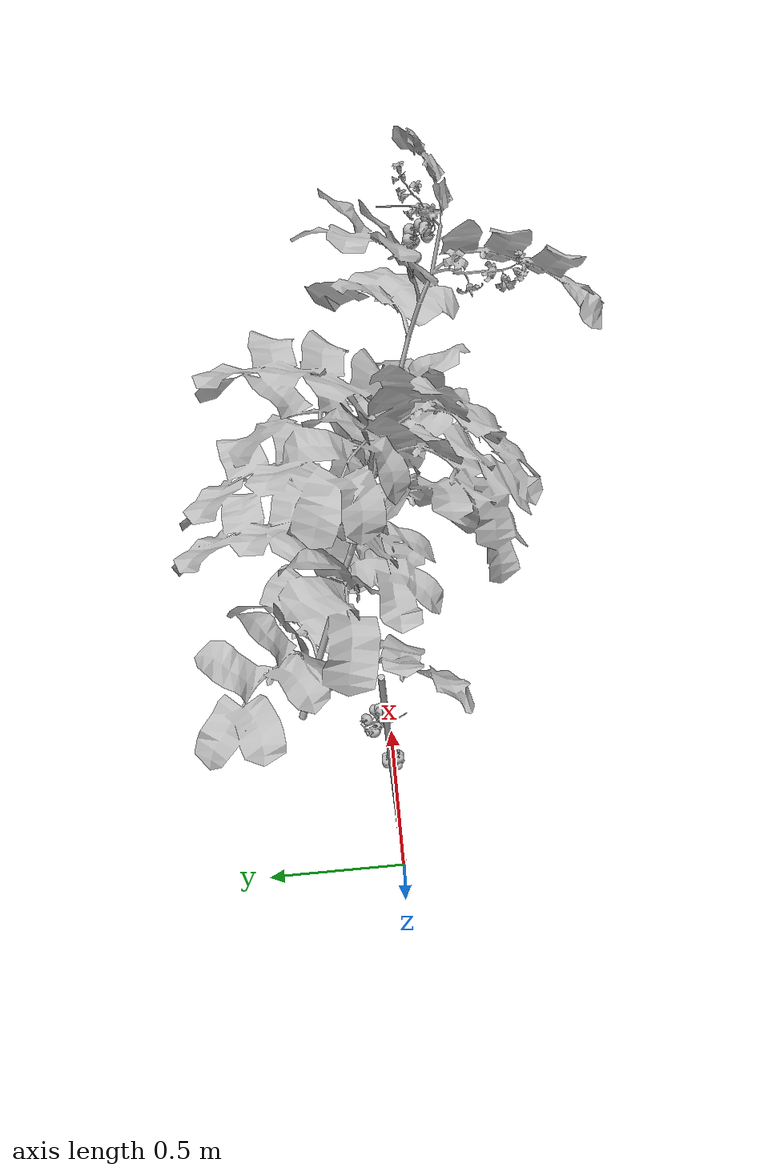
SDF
<?xml version="1.0"?>
<sdf version="1.6">
  <model name="tomato_vine_repo_v2">
    <static>true</static>
    <link name="link">
      <collision name="collision_trunk">
        <geometry><cylinder><radius>0.014</radius><length>1.682</length></cylinder></geometry>
        <pose>0.4018 0 0.7389 0 0.4981 0</pose>
      </collision>
      <visual name="plant">
        <geometry>
          <mesh>
            <uri>model://tomato_vine_repo_v2/meshes/tomato_vine_repo_v2.dae</uri>
          </mesh>
        </geometry>
      </visual>
    </link>
  </model>
</sdf>
